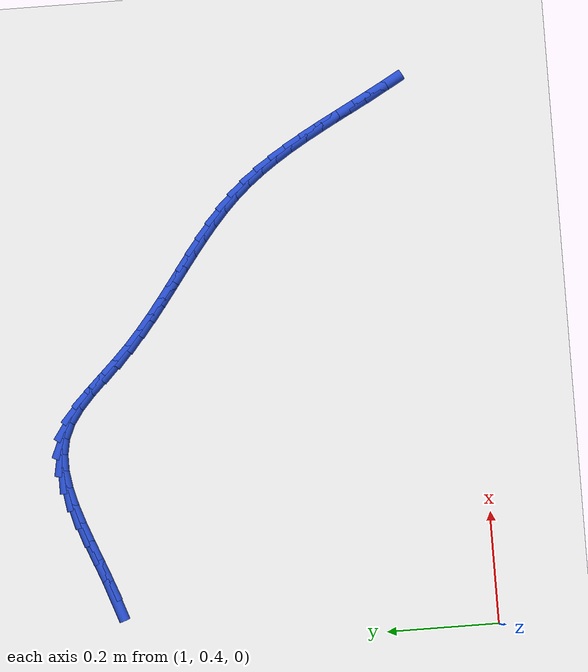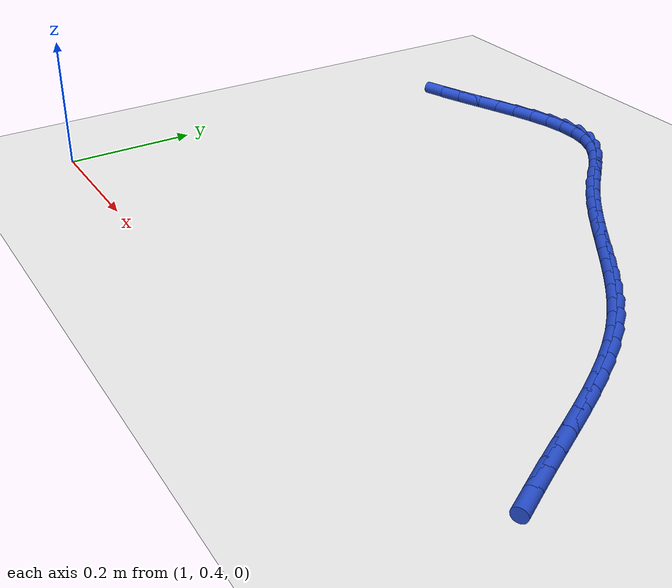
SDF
<sdf version="1.6">
 <world name="default">
  <model name="ground_plane">
   <static>1</static>
   <link name="link">
    <collision name="collision">
     <geometry><plane><normal>0 0 1</normal><size>100 100</size></plane></geometry>
     <surface><friction><ode><mu>100</mu><mu2>50</mu2></ode></friction></surface>
    </collision>
    <visual name="visual">
     <cast_shadows>0</cast_shadows>
     <geometry><plane><normal>0 0 1</normal><size>100 100</size></plane></geometry>
     <material>
      <script><uri>file://media/materials/scripts/gazebo.material</uri><name>Gazebo/WhiteGlow</name></script>
     </material>
    </visual>
   </link>
  </model>
  <model name="line">
   <link name="link_51">
    <pose>1.0928987082672128 1.0750153762010626 0.01 0 1.57 0.3352020451860106</pose>
    <collision name="collision">
     <geometry><cylinder><radius>0.01</radius><length>0.08</length></cylinder></geometry>
    </collision>
    <visual name="visual">
     <material>
      <script><name>Gazebo/Blue</name><uri>file://media/materials/scripts/gazebo.material</uri></script>
     </material>
     <geometry><cylinder><radius>0.01</radius><length>0.08</length></cylinder></geometry>
    </visual>
   </link>
   <link name="link_52">
    <pose>1.127498187213998 1.087068023781209 0.01 0 1.57 0.367186037776528</pose>
    <collision name="collision">
     <geometry><cylinder><radius>0.01</radius><length>0.08</length></cylinder></geometry>
    </collision>
    <visual name="visual">
     <material>
      <script><name>Gazebo/Blue</name><uri>file://media/materials/scripts/gazebo.material</uri></script>
     </material>
     <geometry><cylinder><radius>0.01</radius><length>0.08</length></cylinder></geometry>
    </visual>
   </link>
   <link name="link_53">
    <pose>1.1620503292554436 1.100357793234586 0.01 0 1.57 0.3762128105053831</pose>
    <collision name="collision">
     <geometry><cylinder><radius>0.01</radius><length>0.08</length></cylinder></geometry>
    </collision>
    <visual name="visual">
     <material>
      <script><name>Gazebo/Blue</name><uri>file://media/materials/scripts/gazebo.material</uri></script>
     </material>
     <geometry><cylinder><radius>0.01</radius><length>0.08</length></cylinder></geometry>
    </visual>
   </link>
   <link name="link_54">
    <pose>1.1963578928346383 1.11391024047476 0.01 0 1.57 0.36241655544991563</pose>
    <collision name="collision">
     <geometry><cylinder><radius>0.01</radius><length>0.08</length></cylinder></geometry>
    </collision>
    <visual name="visual">
     <material>
      <script><name>Gazebo/Blue</name><uri>file://media/materials/scripts/gazebo.material</uri></script>
     </material>
     <geometry><cylinder><radius>0.01</radius><length>0.08</length></cylinder></geometry>
    </visual>
   </link>
   <link name="link_55">
    <pose>1.2302236363946726 1.1267509214152982 0.01 0 1.57 0.3238864352297905</pose>
    <collision name="collision">
     <geometry><cylinder><radius>0.01</radius><length>0.08</length></cylinder></geometry>
    </collision>
    <visual name="visual">
     <material>
      <script><name>Gazebo/Blue</name><uri>file://media/materials/scripts/gazebo.material</uri></script>
     </material>
     <geometry><cylinder><radius>0.01</radius><length>0.08</length></cylinder></geometry>
    </visual>
   </link>
   <link name="link_56">
    <pose>1.2634503183786372 1.1379053919697675 0.01 0 1.57 0.2564582332397891</pose>
    <collision name="collision">
     <geometry><cylinder><radius>0.01</radius><length>0.08</length></cylinder></geometry>
    </collision>
    <visual name="visual">
     <material>
      <script><name>Gazebo/Blue</name><uri>file://media/materials/scripts/gazebo.material</uri></script>
     </material>
     <geometry><cylinder><radius>0.01</radius><length>0.08</length></cylinder></geometry>
    </visual>
   </link>
   <link name="link_57">
    <pose>1.295840697229621 1.1463992080517342 0.01 0 1.57 0.15372672755205324</pose>
    <collision name="collision">
     <geometry><cylinder><radius>0.01</radius><length>0.08</length></cylinder></geometry>
    </collision>
    <visual name="visual">
     <material>
      <script><name>Gazebo/Blue</name><uri>file://media/materials/scripts/gazebo.material</uri></script>
     </material>
     <geometry><cylinder><radius>0.01</radius><length>0.08</length></cylinder></geometry>
    </visual>
   </link>
   <link name="link_58">
    <pose>1.327197531390715 1.151257925574765 0.01 0 1.57 0.008270888917334353</pose>
    <collision name="collision">
     <geometry><cylinder><radius>0.01</radius><length>0.08</length></cylinder></geometry>
    </collision>
    <visual name="visual">
     <material>
      <script><name>Gazebo/Blue</name><uri>file://media/materials/scripts/gazebo.material</uri></script>
     </material>
     <geometry><cylinder><radius>0.01</radius><length>0.08</length></cylinder></geometry>
    </visual>
   </link>
   <link name="link_59">
    <pose>1.357323579305009 1.151507100452427 0.01 0 1.57 -0.18379678768056107</pose>
    <collision name="collision">
     <geometry><cylinder><radius>0.01</radius><length>0.08</length></cylinder></geometry>
    </collision>
    <visual name="visual">
     <material>
      <script><name>Gazebo/Blue</name><uri>file://media/materials/scripts/gazebo.material</uri></script>
     </material>
     <geometry><cylinder><radius>0.01</radius><length>0.08</length></cylinder></geometry>
    </visual>
   </link>
   <link name="link_60">
    <pose>1.386021599415593 1.1461722885982868 0.01 0 1.57 -0.41129019910904013</pose>
    <collision name="collision">
     <geometry><cylinder><radius>0.01</radius><length>0.08</length></cylinder></geometry>
    </collision>
    <visual name="visual">
     <material>
      <script><name>Gazebo/Blue</name><uri>file://media/materials/scripts/gazebo.material</uri></script>
     </material>
     <geometry><cylinder><radius>0.01</radius><length>0.08</length></cylinder></geometry>
    </visual>
   </link>
   <link name="link_61">
    <pose>1.4131144366950752 1.1343553144220757 0.01 0 1.57 -0.6062342366465657</pose>
    <collision name="collision">
     <geometry><cylinder><radius>0.01</radius><length>0.08</length></cylinder></geometry>
    </collision>
    <visual name="visual">
     <material>
      <script><name>Gazebo/Blue</name><uri>file://media/materials/scripts/gazebo.material</uri></script>
     </material>
     <geometry><cylinder><radius>0.01</radius><length>0.08</length></cylinder></geometry>
    </visual>
   </link>
   <link name="link_62">
    <pose>1.4387921316858892 1.1165522428808354 0.01 0 1.57 -0.7278247261144236</pose>
    <collision name="collision">
     <geometry><cylinder><radius>0.01</radius><length>0.08</length></cylinder></geometry>
    </collision>
    <visual name="visual">
     <material>
      <script><name>Gazebo/Blue</name><uri>file://media/materials/scripts/gazebo.material</uri></script>
     </material>
     <geometry><cylinder><radius>0.01</radius><length>0.08</length></cylinder></geometry>
    </visual>
   </link>
   <link name="link_63">
    <pose>1.4635658965819818 1.0944786267903541 0.01 0 1.57 -0.7893918550376261</pose>
    <collision name="collision">
     <geometry><cylinder><radius>0.01</radius><length>0.08</length></cylinder></geometry>
    </collision>
    <visual name="visual">
     <material>
      <script><name>Gazebo/Blue</name><uri>file://media/materials/scripts/gazebo.material</uri></script>
     </material>
     <geometry><cylinder><radius>0.01</radius><length>0.08</length></cylinder></geometry>
    </visual>
   </link>
   <link name="link_64">
    <pose>1.487957773542856 1.0698911403152205 0.01 0 1.57 -0.8016899265698765</pose>
    <collision name="collision">
     <geometry><cylinder><radius>0.01</radius><length>0.08</length></cylinder></geometry>
    </collision>
    <visual name="visual">
     <material>
      <script><name>Gazebo/Blue</name><uri>file://media/materials/scripts/gazebo.material</uri></script>
     </material>
     <geometry><cylinder><radius>0.01</radius><length>0.08</length></cylinder></geometry>
    </visual>
   </link>
   <link name="link_65">
    <pose>1.5124898047280162 1.0445464576200232 0.01 0 1.57 -0.7700968578919272</pose>
    <collision name="collision">
     <geometry><cylinder><radius>0.01</radius><length>0.08</length></cylinder></geometry>
    </collision>
    <visual name="visual">
     <material>
      <script><name>Gazebo/Blue</name><uri>file://media/materials/scripts/gazebo.material</uri></script>
     </material>
     <geometry><cylinder><radius>0.01</radius><length>0.08</length></cylinder></geometry>
    </visual>
   </link>
   <link name="link_66">
    <pose>1.5376601915975374 1.0201347999758636 0.01 0 1.57 -0.7230304148412149</pose>
    <collision name="collision">
     <geometry><cylinder><radius>0.01</radius><length>0.08</length></cylinder></geometry>
    </collision>
    <visual name="visual">
     <material>
      <script><name>Gazebo/Blue</name><uri>file://media/materials/scripts/gazebo.material</uri></script>
     </material>
     <geometry><cylinder><radius>0.01</radius><length>0.08</length></cylinder></geometry>
    </visual>
   </link>
   <link name="link_67">
    <pose>1.5635785636922532 0.9972632942405313 0.01 0 1.57 -0.6847557749656862</pose>
    <collision name="collision">
     <geometry><cylinder><radius>0.01</radius><length>0.08</length></cylinder></geometry>
    </collision>
    <visual name="visual">
     <material>
      <script><name>Gazebo/Blue</name><uri>file://media/materials/scripts/gazebo.material</uri></script>
     </material>
     <geometry><cylinder><radius>0.01</radius><length>0.08</length></cylinder></geometry>
    </visual>
   </link>
   <link name="link_68">
    <pose>1.590038254982863 0.975657433916414 0.01 0 1.57 -0.6565484600885779</pose>
    <collision name="collision">
     <geometry><cylinder><radius>0.01</radius><length>0.08</length></cylinder></geometry>
    </collision>
    <visual name="visual">
     <material>
      <script><name>Gazebo/Blue</name><uri>file://media/materials/scripts/gazebo.material</uri></script>
     </material>
     <geometry><cylinder><radius>0.01</radius><length>0.08</length></cylinder></geometry>
    </visual>
   </link>
   <link name="link_69">
    <pose>1.6168234062047735 0.9550170875410221 0.01 0 1.57 -0.6388182663092193</pose>
    <collision name="collision">
     <geometry><cylinder><radius>0.01</radius><length>0.08</length></cylinder></geometry>
    </collision>
    <visual name="visual">
     <material>
      <script><name>Gazebo/Blue</name><uri>file://media/materials/scripts/gazebo.material</uri></script>
     </material>
     <geometry><cylinder><radius>0.01</radius><length>0.08</length></cylinder></geometry>
    </visual>
   </link>
   <link name="link_70">
    <pose>1.6437181580933908 0.9350421236518687 0.01 0 1.57 -0.6318942539059451</pose>
    <collision name="collision">
     <geometry><cylinder><radius>0.01</radius><length>0.08</length></cylinder></geometry>
    </collision>
    <visual name="visual">
     <material>
      <script><name>Gazebo/Blue</name><uri>file://media/materials/scripts/gazebo.material</uri></script>
     </material>
     <geometry><cylinder><radius>0.01</radius><length>0.08</length></cylinder></geometry>
    </visual>
   </link>
   <link name="link_71">
    <pose>1.6705066513841238 0.9154324107864649 0.01 0 1.57 -0.636080221314197</pose>
    <collision name="collision">
     <geometry><cylinder><radius>0.01</radius><length>0.08</length></cylinder></geometry>
    </collision>
    <visual name="visual">
     <material>
      <script><name>Gazebo/Blue</name><uri>file://media/materials/scripts/gazebo.material</uri></script>
     </material>
     <geometry><cylinder><radius>0.01</radius><length>0.08</length></cylinder></geometry>
    </visual>
   </link>
   <link name="link_72">
    <pose>1.6969730268123795 0.8958878174823226 0.01 0 1.57 -0.6516775976688524</pose>
    <collision name="collision">
     <geometry><cylinder><radius>0.01</radius><length>0.08</length></cylinder></geometry>
    </collision>
    <visual name="visual">
     <material>
      <script><name>Gazebo/Blue</name><uri>file://media/materials/scripts/gazebo.material</uri></script>
     </material>
     <geometry><cylinder><radius>0.01</radius><length>0.08</length></cylinder></geometry>
    </visual>
   </link>
   <link name="link_73">
    <pose>1.7229014251135657 0.8761082122769537 0.01 0 1.57 -0.6789676711831227</pose>
    <collision name="collision">
     <geometry><cylinder><radius>0.01</radius><length>0.08</length></cylinder></geometry>
    </collision>
    <visual name="visual">
     <material>
      <script><name>Gazebo/Blue</name><uri>file://media/materials/scripts/gazebo.material</uri></script>
     </material>
     <geometry><cylinder><radius>0.01</radius><length>0.08</length></cylinder></geometry>
    </visual>
   </link>
   <link name="link_74">
    <pose>1.7480759870230895 0.8557934637078706 0.01 0 1.57 -0.7181455277484654</pose>
    <collision name="collision">
     <geometry><cylinder><radius>0.01</radius><length>0.08</length></cylinder></geometry>
    </collision>
    <visual name="visual">
     <material>
      <script><name>Gazebo/Blue</name><uri>file://media/materials/scripts/gazebo.material</uri></script>
     </material>
     <geometry><cylinder><radius>0.01</radius><length>0.08</length></cylinder></geometry>
    </visual>
   </link>
   <link name="link_75">
    <pose>1.7722808532763583 0.8346434403125842 0.01 0 1.57 -0.7692007974757122</pose>
    <collision name="collision">
     <geometry><cylinder><radius>0.01</radius><length>0.08</length></cylinder></geometry>
    </collision>
    <visual name="visual">
     <material>
      <script><name>Gazebo/Blue</name><uri>file://media/materials/scripts/gazebo.material</uri></script>
     </material>
     <geometry><cylinder><radius>0.01</radius><length>0.08</length></cylinder></geometry>
    </visual>
   </link>
   <link name="link_76">
    <pose>1.795300164608781 0.812358010628607 0.01 0 1.57 -0.8315837573089901</pose>
    <collision name="collision">
     <geometry><cylinder><radius>0.01</radius><length>0.08</length></cylinder></geometry>
    </collision>
    <visual name="visual">
     <material>
      <script><name>Gazebo/Blue</name><uri>file://media/materials/scripts/gazebo.material</uri></script>
     </material>
     <geometry><cylinder><radius>0.01</radius><length>0.08</length></cylinder></geometry>
    </visual>
   </link>
   <link name="link_77">
    <pose>1.8169214849217499 0.7886412331858317 0.01 0 1.57 -0.8963731660071597</pose>
    <collision name="collision">
     <geometry><cylinder><radius>0.01</radius><length>0.08</length></cylinder></geometry>
    </collision>
    <visual name="visual">
     <material>
      <script><name>Gazebo/Blue</name><uri>file://media/materials/scripts/gazebo.material</uri></script>
     </material>
     <geometry><cylinder><radius>0.01</radius><length>0.08</length></cylinder></geometry>
    </visual>
   </link>
   <link name="link_78">
    <pose>1.8370997226552508 0.763401998048567 0.01 0 1.57 -0.9515807476593038</pose>
    <collision name="collision">
     <geometry><cylinder><radius>0.01</radius><length>0.08</length></cylinder></geometry>
    </collision>
    <visual name="visual">
     <material>
      <script><name>Gazebo/Blue</name><uri>file://media/materials/scripts/gazebo.material</uri></script>
     </material>
     <geometry><cylinder><radius>0.01</radius><length>0.08</length></cylinder></geometry>
    </visual>
   </link>
   <link name="link_79">
    <pose>1.8560293805655779 0.7368424613288845 0.01 0 1.57 -0.9965024253885824</pose>
    <collision name="collision">
     <geometry><cylinder><radius>0.01</radius><length>0.08</length></cylinder></geometry>
    </collision>
    <visual name="visual">
     <material>
      <script><name>Gazebo/Blue</name><uri>file://media/materials/scripts/gazebo.material</uri></script>
     </material>
     <geometry><cylinder><radius>0.01</radius><length>0.08</length></cylinder></geometry>
    </visual>
   </link>
   <link name="link_80">
    <pose>1.8739234205205497 0.7091873732920296 0.01 0 1.57 -1.031515620052271</pose>
    <collision name="collision">
     <geometry><cylinder><radius>0.01</radius><length>0.08</length></cylinder></geometry>
    </collision>
    <visual name="visual">
     <material>
      <script><name>Gazebo/Blue</name><uri>file://media/materials/scripts/gazebo.material</uri></script>
     </material>
     <geometry><cylinder><radius>0.01</radius><length>0.08</length></cylinder></geometry>
    </visual>
   </link>
   <link name="link_81">
    <pose>1.890994804387984 0.6806614842032463 0.01 0 1.57 -1.0570414957962166</pose>
    <collision name="collision">
     <geometry><cylinder><radius>0.01</radius><length>0.08</length></cylinder></geometry>
    </collision>
    <visual name="visual">
     <material>
      <script><name>Gazebo/Blue</name><uri>file://media/materials/scripts/gazebo.material</uri></script>
     </material>
     <geometry><cylinder><radius>0.01</radius><length>0.08</length></cylinder></geometry>
    </visual>
   </link>
   <link name="link_82">
    <pose>1.9074564940357004 0.6514895443277791 0.01 0 1.57 -1.073452165395257</pose>
    <collision name="collision">
     <geometry><cylinder><radius>0.01</radius><length>0.08</length></cylinder></geometry>
    </collision>
    <visual name="visual">
     <material>
      <script><name>Gazebo/Blue</name><uri>file://media/materials/scripts/gazebo.material</uri></script>
     </material>
     <geometry><cylinder><radius>0.01</radius><length>0.08</length></cylinder></geometry>
    </visual>
   </link>
   <link name="link_83">
    <pose>1.923521451331517 0.6218963039308727 0.01 0 1.57 -1.0810141594300668</pose>
    <collision name="collision">
     <geometry><cylinder><radius>0.01</radius><length>0.08</length></cylinder></geometry>
    </collision>
    <visual name="visual">
     <material>
      <script><name>Gazebo/Blue</name><uri>file://media/materials/scripts/gazebo.material</uri></script>
     </material>
     <geometry><cylinder><radius>0.01</radius><length>0.08</length></cylinder></geometry>
    </visual>
   </link>
   <link name="link_84">
    <pose>1.9394026381432519 0.5921065132777714 0.01 0 1.57 -1.0798577545190435</pose>
    <collision name="collision">
     <geometry><cylinder><radius>0.01</radius><length>0.08</length></cylinder></geometry>
    </collision>
    <visual name="visual">
     <material>
      <script><name>Gazebo/Blue</name><uri>file://media/materials/scripts/gazebo.material</uri></script>
     </material>
     <geometry><cylinder><radius>0.01</radius><length>0.08</length></cylinder></geometry>
    </visual>
   </link>
   <link name="link_85">
    <pose>1.9553130163387242 0.5623449226337194 0.01 0 1.57 -1.070672349839233</pose>
    <collision name="collision">
     <geometry><cylinder><radius>0.01</radius><length>0.08</length></cylinder></geometry>
    </collision>
    <visual name="visual">
     <material>
      <script><name>Gazebo/Blue</name><uri>file://media/materials/scripts/gazebo.material</uri></script>
     </material>
     <geometry><cylinder><radius>0.01</radius><length>0.08</length></cylinder></geometry>
    </visual>
   </link>
   <link name="link_86">
    <pose>1.9714473516591176 0.5328199205711985 0.01 0 1.57 -1.061091811210459</pose>
    <collision name="collision">
     <geometry><cylinder><radius>0.01</radius><length>0.08</length></cylinder></geometry>
    </collision>
    <visual name="visual">
     <material>
      <script><name>Gazebo/Blue</name><uri>file://media/materials/scripts/gazebo.material</uri></script>
     </material>
     <geometry><cylinder><radius>0.01</radius><length>0.08</length></cylinder></geometry>
    </visual>
   </link>
  </model>
 </world>
</sdf>
